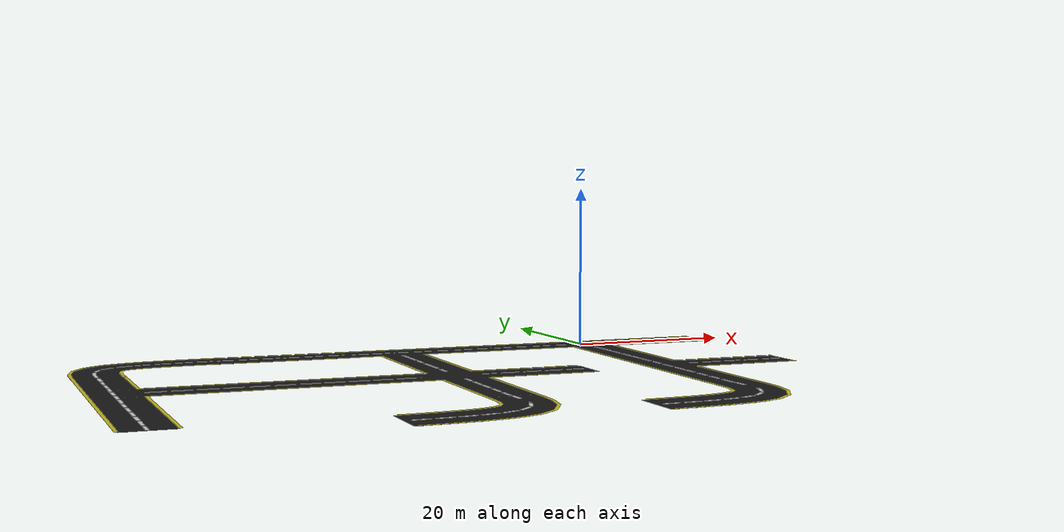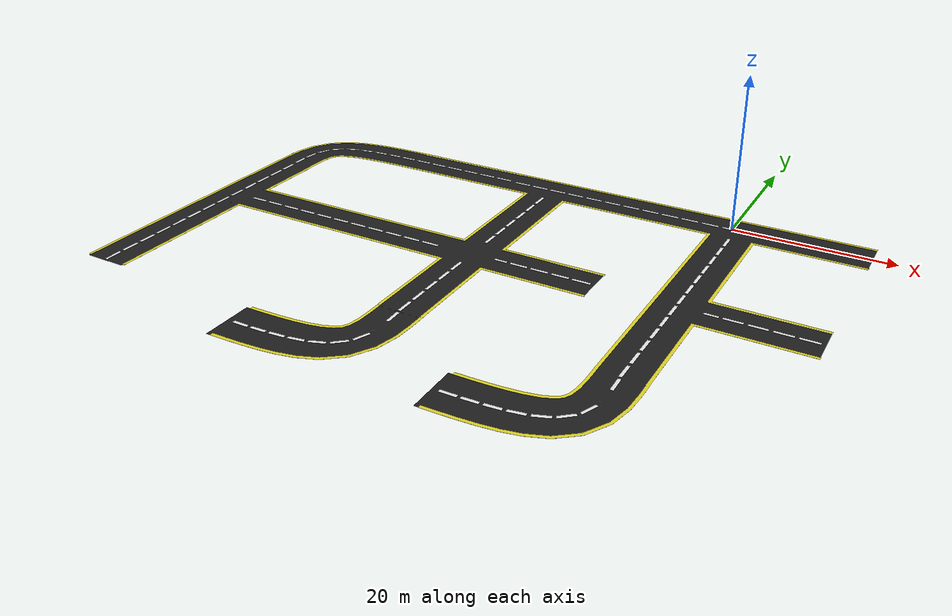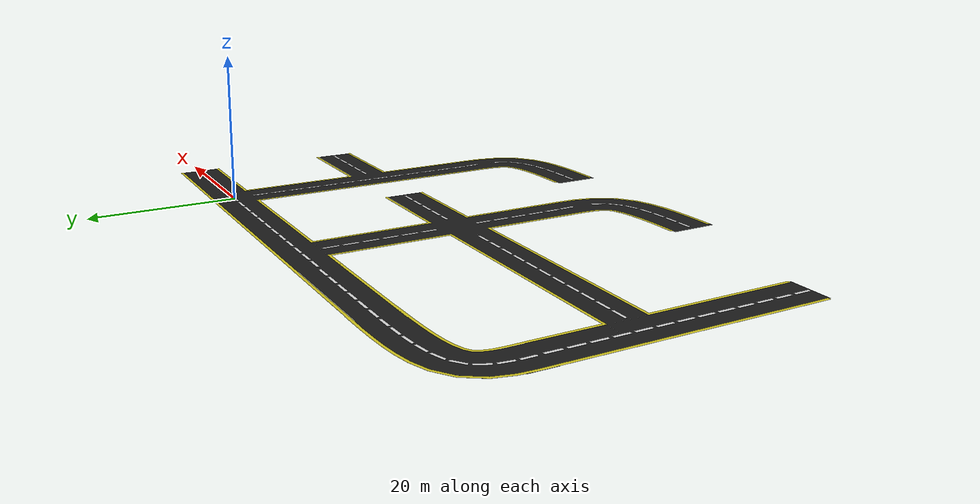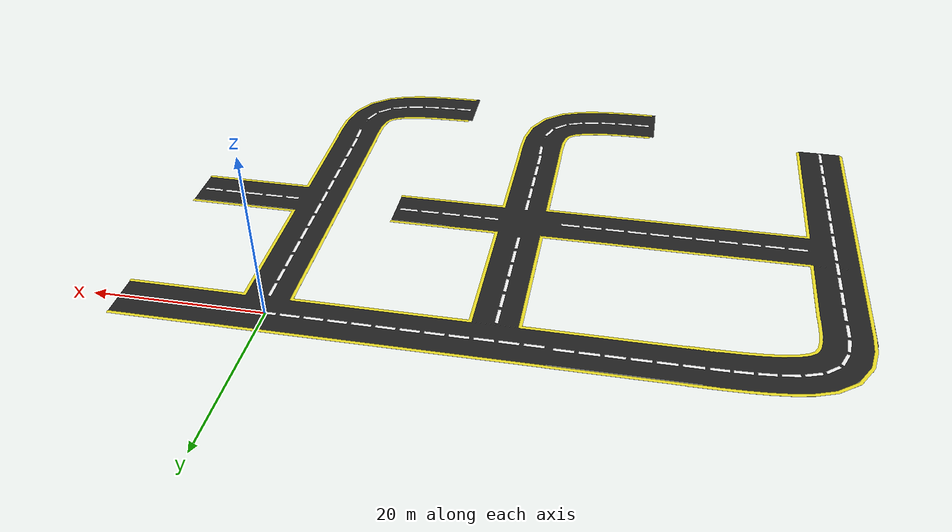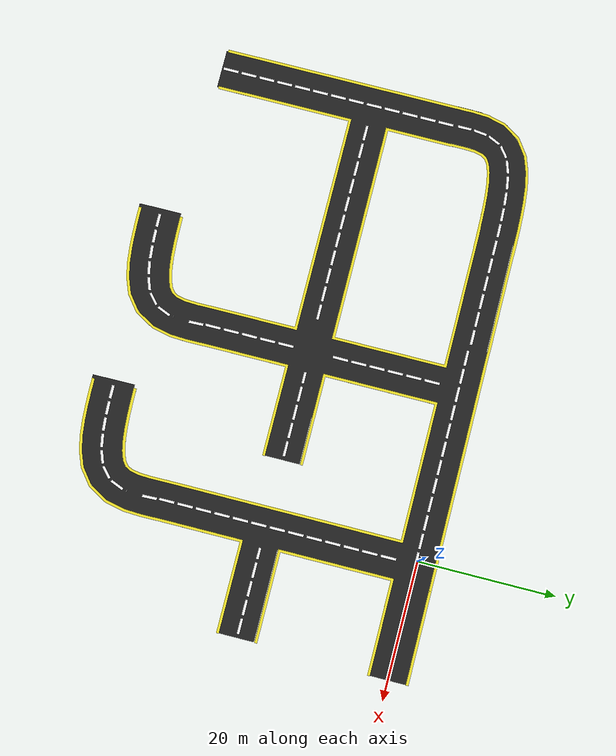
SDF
<?xml version='1.0'?>
<sdf version='1.7'>
  <model name='pp_track'>
  <pose>0.045411 -0.055458 0.013767 0 3.14 0</pose>
    <link name='link_0'>
      <inertial>
        <mass>1</mass>
        <inertia>
          <ixx>0.166667</ixx>
          <ixy>0</ixy>
          <ixz>0</ixz>
          <iyy>0.166667</iyy>
          <iyz>0</iyz>
          <izz>0.166667</izz>
        </inertia>
      </inertial>
      <pose>0.045411 -0.055458 0.013767 0 -0 0</pose>
      <visual name='visual'>
        <pose>0 0 0 0 -0 0</pose>
        <geometry>
          <mesh>
            <uri>model://pp_track/meshes/road.stl</uri>
            <scale>1 1 1</scale>
          </mesh>
        </geometry>
        <material>
          <lighting>1</lighting>
          <script>
            <uri>file://media/materials/scripts/gazebo.material</uri>
            <name>Gazebo/Black</name>
          </script>
          <shader type='pixel'/>
        </material>
        <transparency>0</transparency>
        <cast_shadows>1</cast_shadows>
      </visual>
      <collision name='collision'>
        <laser_retro>0</laser_retro>
        <max_contacts>10</max_contacts>
        <pose>0 0 0 0 -0 0</pose>
        <geometry>
          <mesh>
            <uri>model://pp_track/meshes/road.stl</uri>
            <scale>1 1 1</scale>
          </mesh>
        </geometry>
        <surface>
          <friction>
            <ode>
              <mu>1</mu>
              <mu2>1</mu2>
              <fdir1>0 0 0</fdir1>
              <slip1>0</slip1>
              <slip2>0</slip2>
            </ode>
            <torsional>
              <coefficient>1</coefficient>
              <patch_radius>0</patch_radius>
              <surface_radius>0</surface_radius>
              <use_patch_radius>1</use_patch_radius>
              <ode>
                <slip>0</slip>
              </ode>
            </torsional>
          </friction>
          <bounce>
            <restitution_coefficient>0</restitution_coefficient>
            <threshold>1e+06</threshold>
          </bounce>
          <contact>
            <collide_without_contact>0</collide_without_contact>
            <collide_without_contact_bitmask>1</collide_without_contact_bitmask>
            <collide_bitmask>1</collide_bitmask>
            <ode>
              <soft_cfm>0</soft_cfm>
              <soft_erp>0.2</soft_erp>
              <kp>1e+13</kp>
              <kd>1</kd>
              <max_vel>0.01</max_vel>
              <min_depth>0</min_depth>
            </ode>
            <bullet>
              <split_impulse>1</split_impulse>
              <split_impulse_penetration_threshold>-0.01</split_impulse_penetration_threshold>
              <soft_cfm>0</soft_cfm>
              <soft_erp>0.2</soft_erp>
              <kp>1e+13</kp>
              <kd>1</kd>
            </bullet>
          </contact>
        </surface>
      </collision>
    </link>
    <link name='link_1'>
      <inertial>
        <mass>1</mass>
        <inertia>
          <ixx>0.166667</ixx>
          <ixy>0</ixy>
          <ixz>0</ixz>
          <iyy>0.166667</iyy>
          <iyz>0</iyz>
          <izz>0.166667</izz>
        </inertia>
      </inertial>
      <pose>-0.03336 0.030942 -0.006884 0 -0 0</pose>
      <visual name='visual'>
        <pose>0 0 0 0 -0 0</pose>
        <geometry>
          <mesh>
            <uri>model://pp_track/meshes/divider.stl</uri>
            <scale>1 1 1</scale>
          </mesh>
        </geometry>
        <material>
          <lighting>1</lighting>
          <script>
            <uri>file://media/materials/scripts/gazebo.material</uri>
            <name>Gazebo/White</name>
          </script>
          <shader type='pixel'/>
        </material>
        <transparency>0</transparency>
        <cast_shadows>1</cast_shadows>
      </visual>
      <collision name='collision'>
        <laser_retro>0</laser_retro>
        <max_contacts>10</max_contacts>
        <pose>0 0 0 0 -0 0</pose>
        <geometry>
          <mesh>
            <uri>model://pp_track/meshes/divider.stl</uri>
            <scale>1 1 1</scale>
          </mesh>
        </geometry>
        <surface>
          <friction>
            <ode>
              <mu>1</mu>
              <mu2>1</mu2>
              <fdir1>0 0 0</fdir1>
              <slip1>0</slip1>
              <slip2>0</slip2>
            </ode>
            <torsional>
              <coefficient>1</coefficient>
              <patch_radius>0</patch_radius>
              <surface_radius>0</surface_radius>
              <use_patch_radius>1</use_patch_radius>
              <ode>
                <slip>0</slip>
              </ode>
            </torsional>
          </friction>
          <bounce>
            <restitution_coefficient>0</restitution_coefficient>
            <threshold>1e+06</threshold>
          </bounce>
          <contact>
            <collide_without_contact>0</collide_without_contact>
            <collide_without_contact_bitmask>1</collide_without_contact_bitmask>
            <collide_bitmask>1</collide_bitmask>
            <ode>
              <soft_cfm>0</soft_cfm>
              <soft_erp>0.2</soft_erp>
              <kp>1e+13</kp>
              <kd>1</kd>
              <max_vel>0.01</max_vel>
              <min_depth>0</min_depth>
            </ode>
            <bullet>
              <split_impulse>1</split_impulse>
              <split_impulse_penetration_threshold>-0.01</split_impulse_penetration_threshold>
              <soft_cfm>0</soft_cfm>
              <soft_erp>0.2</soft_erp>
              <kp>1e+13</kp>
              <kd>1</kd>
            </bullet>
          </contact>
        </surface>
      </collision>
    </link>
    <link name='link_2'>
      <inertial>
        <mass>1</mass>
        <inertia>
          <ixx>0.166667</ixx>
          <ixy>0</ixy>
          <ixz>0</ixz>
          <iyy>0.166667</iyy>
          <iyz>0</iyz>
          <izz>0.166667</izz>
        </inertia>
      </inertial>
      <pose>-0.01205 0.024516 -0.006884 0 -0 0</pose>
      <visual name='visual'>
        <pose>0 0 0 0 -0 0</pose>
        <geometry>
          <mesh>
            <uri>model://pp_track/meshes/sides.stl</uri>
            <scale>1 1 1</scale>
          </mesh>
        </geometry>
        <material>
          <lighting>1</lighting>
          <script>
            <uri>file://media/materials/scripts/gazebo.material</uri>
            <name>Gazebo/Yellow</name>
          </script>
          <shader type='pixel'/>
        </material>
        <transparency>0</transparency>
        <cast_shadows>1</cast_shadows>
      </visual>
      <collision name='collision'>
        <laser_retro>0</laser_retro>
        <max_contacts>10</max_contacts>
        <pose>0 0 0 0 -0 0</pose>
        <geometry>
          <mesh>
            <uri>model://pp_track/meshes/sides.stl</uri>
            <scale>1 1 1</scale>
          </mesh>
        </geometry>
        <surface>
          <friction>
            <ode>
              <mu>1</mu>
              <mu2>1</mu2>
              <fdir1>0 0 0</fdir1>
              <slip1>0</slip1>
              <slip2>0</slip2>
            </ode>
            <torsional>
              <coefficient>1</coefficient>
              <patch_radius>0</patch_radius>
              <surface_radius>0</surface_radius>
              <use_patch_radius>1</use_patch_radius>
              <ode>
                <slip>0</slip>
              </ode>
            </torsional>
          </friction>
          <bounce>
            <restitution_coefficient>0</restitution_coefficient>
            <threshold>1e+06</threshold>
          </bounce>
          <contact>
            <collide_without_contact>0</collide_without_contact>
            <collide_without_contact_bitmask>1</collide_without_contact_bitmask>
            <collide_bitmask>1</collide_bitmask>
            <ode>
              <soft_cfm>0</soft_cfm>
              <soft_erp>0.2</soft_erp>
              <kp>1e+13</kp>
              <kd>1</kd>
              <max_vel>0.01</max_vel>
              <min_depth>0</min_depth>
            </ode>
            <bullet>
              <split_impulse>1</split_impulse>
              <split_impulse_penetration_threshold>-0.01</split_impulse_penetration_threshold>
              <soft_cfm>0</soft_cfm>
              <soft_erp>0.2</soft_erp>
              <kp>1e+13</kp>
              <kd>1</kd>
            </bullet>
          </contact>
        </surface>
      </collision>
    </link>
    <static>1</static>
    <allow_auto_disable>1</allow_auto_disable>
  </model>
</sdf>
